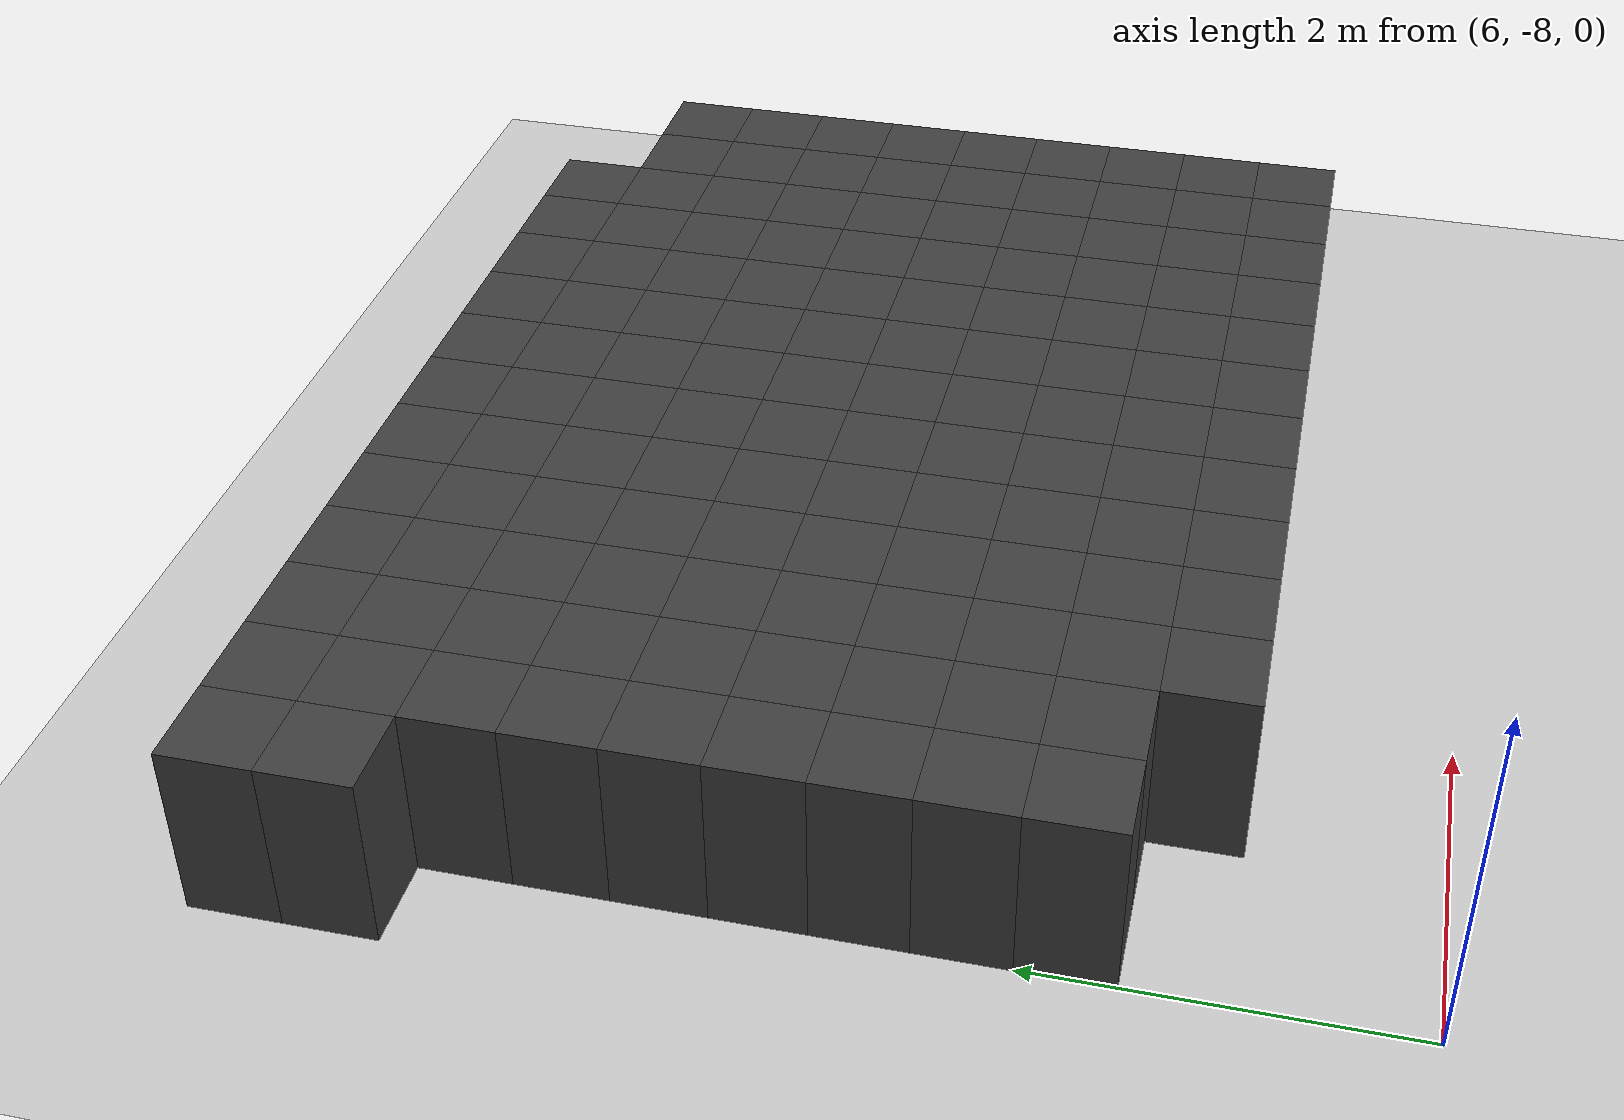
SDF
<sdf version="1.7">
 <world name="map_11515">
  <model name="ground_plane">
   <static>true</static>
   <link name="link">
    <collision name="collision">
     <geometry><plane><normal>0 0 1</normal><size>200 200</size></plane></geometry>
    </collision>
    <visual name="visual">
     <geometry><plane><normal>0 0 1</normal><size>200 200</size></plane></geometry>
     <material><ambient>0.8 0.8 0.8 1</ambient><diffuse>0.8 0.8 0.8 1</diffuse></material>
    </visual>
   </link>
  </model>
  <model name="maze_environment">
   <static>true</static>
   <link name="wall_1259">
    <pose>5.750 -2.250 0.500 0 0 0</pose>
    <collision name="col"><geometry><box><size>0.5 0.5 1.0</size></box></geometry></collision>
    <visual name="vis">
     <geometry><box><size>0.5 0.5 1.0</size></box></geometry>
     <material><ambient>0.15 0.15 0.15 1</ambient><diffuse>0.25 0.25 0.25 1</diffuse></material>
    </visual>
   </link>
   <link name="wall_1260">
    <pose>6.250 -2.250 0.500 0 0 0</pose>
    <collision name="col"><geometry><box><size>0.5 0.5 1.0</size></box></geometry></collision>
    <visual name="vis">
     <geometry><box><size>0.5 0.5 1.0</size></box></geometry>
     <material><ambient>0.15 0.15 0.15 1</ambient><diffuse>0.25 0.25 0.25 1</diffuse></material>
    </visual>
   </link>
   <link name="wall_1261">
    <pose>6.750 -2.250 0.500 0 0 0</pose>
    <collision name="col"><geometry><box><size>0.5 0.5 1.0</size></box></geometry></collision>
    <visual name="vis">
     <geometry><box><size>0.5 0.5 1.0</size></box></geometry>
     <material><ambient>0.15 0.15 0.15 1</ambient><diffuse>0.25 0.25 0.25 1</diffuse></material>
    </visual>
   </link>
   <link name="wall_1262">
    <pose>7.250 -2.250 0.500 0 0 0</pose>
    <collision name="col"><geometry><box><size>0.5 0.5 1.0</size></box></geometry></collision>
    <visual name="vis">
     <geometry><box><size>0.5 0.5 1.0</size></box></geometry>
     <material><ambient>0.15 0.15 0.15 1</ambient><diffuse>0.25 0.25 0.25 1</diffuse></material>
    </visual>
   </link>
   <link name="wall_1263">
    <pose>7.750 -2.250 0.500 0 0 0</pose>
    <collision name="col"><geometry><box><size>0.5 0.5 1.0</size></box></geometry></collision>
    <visual name="vis">
     <geometry><box><size>0.5 0.5 1.0</size></box></geometry>
     <material><ambient>0.15 0.15 0.15 1</ambient><diffuse>0.25 0.25 0.25 1</diffuse></material>
    </visual>
   </link>
   <link name="wall_1264">
    <pose>8.250 -2.250 0.500 0 0 0</pose>
    <collision name="col"><geometry><box><size>0.5 0.5 1.0</size></box></geometry></collision>
    <visual name="vis">
     <geometry><box><size>0.5 0.5 1.0</size></box></geometry>
     <material><ambient>0.15 0.15 0.15 1</ambient><diffuse>0.25 0.25 0.25 1</diffuse></material>
    </visual>
   </link>
   <link name="wall_1265">
    <pose>8.750 -2.250 0.500 0 0 0</pose>
    <collision name="col"><geometry><box><size>0.5 0.5 1.0</size></box></geometry></collision>
    <visual name="vis">
     <geometry><box><size>0.5 0.5 1.0</size></box></geometry>
     <material><ambient>0.15 0.15 0.15 1</ambient><diffuse>0.25 0.25 0.25 1</diffuse></material>
    </visual>
   </link>
   <link name="wall_1266">
    <pose>9.250 -2.250 0.500 0 0 0</pose>
    <collision name="col"><geometry><box><size>0.5 0.5 1.0</size></box></geometry></collision>
    <visual name="vis">
     <geometry><box><size>0.5 0.5 1.0</size></box></geometry>
     <material><ambient>0.15 0.15 0.15 1</ambient><diffuse>0.25 0.25 0.25 1</diffuse></material>
    </visual>
   </link>
   <link name="wall_1267">
    <pose>9.750 -2.250 0.500 0 0 0</pose>
    <collision name="col"><geometry><box><size>0.5 0.5 1.0</size></box></geometry></collision>
    <visual name="vis">
     <geometry><box><size>0.5 0.5 1.0</size></box></geometry>
     <material><ambient>0.15 0.15 0.15 1</ambient><diffuse>0.25 0.25 0.25 1</diffuse></material>
    </visual>
   </link>
   <link name="wall_1268">
    <pose>10.250 -2.250 0.500 0 0 0</pose>
    <collision name="col"><geometry><box><size>0.5 0.5 1.0</size></box></geometry></collision>
    <visual name="vis">
     <geometry><box><size>0.5 0.5 1.0</size></box></geometry>
     <material><ambient>0.15 0.15 0.15 1</ambient><diffuse>0.25 0.25 0.25 1</diffuse></material>
    </visual>
   </link>
   <link name="wall_1269">
    <pose>10.750 -2.250 0.500 0 0 0</pose>
    <collision name="col"><geometry><box><size>0.5 0.5 1.0</size></box></geometry></collision>
    <visual name="vis">
     <geometry><box><size>0.5 0.5 1.0</size></box></geometry>
     <material><ambient>0.15 0.15 0.15 1</ambient><diffuse>0.25 0.25 0.25 1</diffuse></material>
    </visual>
   </link>
   <link name="wall_1270">
    <pose>11.250 -2.250 0.500 0 0 0</pose>
    <collision name="col"><geometry><box><size>0.5 0.5 1.0</size></box></geometry></collision>
    <visual name="vis">
     <geometry><box><size>0.5 0.5 1.0</size></box></geometry>
     <material><ambient>0.15 0.15 0.15 1</ambient><diffuse>0.25 0.25 0.25 1</diffuse></material>
    </visual>
   </link>
   <link name="wall_1305">
    <pose>5.750 -2.750 0.500 0 0 0</pose>
    <collision name="col"><geometry><box><size>0.5 0.5 1.0</size></box></geometry></collision>
    <visual name="vis">
     <geometry><box><size>0.5 0.5 1.0</size></box></geometry>
     <material><ambient>0.15 0.15 0.15 1</ambient><diffuse>0.25 0.25 0.25 1</diffuse></material>
    </visual>
   </link>
   <link name="wall_1306">
    <pose>6.250 -2.750 0.500 0 0 0</pose>
    <collision name="col"><geometry><box><size>0.5 0.5 1.0</size></box></geometry></collision>
    <visual name="vis">
     <geometry><box><size>0.5 0.5 1.0</size></box></geometry>
     <material><ambient>0.15 0.15 0.15 1</ambient><diffuse>0.25 0.25 0.25 1</diffuse></material>
    </visual>
   </link>
   <link name="wall_1307">
    <pose>6.750 -2.750 0.500 0 0 0</pose>
    <collision name="col"><geometry><box><size>0.5 0.5 1.0</size></box></geometry></collision>
    <visual name="vis">
     <geometry><box><size>0.5 0.5 1.0</size></box></geometry>
     <material><ambient>0.15 0.15 0.15 1</ambient><diffuse>0.25 0.25 0.25 1</diffuse></material>
    </visual>
   </link>
   <link name="wall_1308">
    <pose>7.250 -2.750 0.500 0 0 0</pose>
    <collision name="col"><geometry><box><size>0.5 0.5 1.0</size></box></geometry></collision>
    <visual name="vis">
     <geometry><box><size>0.5 0.5 1.0</size></box></geometry>
     <material><ambient>0.15 0.15 0.15 1</ambient><diffuse>0.25 0.25 0.25 1</diffuse></material>
    </visual>
   </link>
   <link name="wall_1309">
    <pose>7.750 -2.750 0.500 0 0 0</pose>
    <collision name="col"><geometry><box><size>0.5 0.5 1.0</size></box></geometry></collision>
    <visual name="vis">
     <geometry><box><size>0.5 0.5 1.0</size></box></geometry>
     <material><ambient>0.15 0.15 0.15 1</ambient><diffuse>0.25 0.25 0.25 1</diffuse></material>
    </visual>
   </link>
   <link name="wall_1310">
    <pose>8.250 -2.750 0.500 0 0 0</pose>
    <collision name="col"><geometry><box><size>0.5 0.5 1.0</size></box></geometry></collision>
    <visual name="vis">
     <geometry><box><size>0.5 0.5 1.0</size></box></geometry>
     <material><ambient>0.15 0.15 0.15 1</ambient><diffuse>0.25 0.25 0.25 1</diffuse></material>
    </visual>
   </link>
   <link name="wall_1311">
    <pose>8.750 -2.750 0.500 0 0 0</pose>
    <collision name="col"><geometry><box><size>0.5 0.5 1.0</size></box></geometry></collision>
    <visual name="vis">
     <geometry><box><size>0.5 0.5 1.0</size></box></geometry>
     <material><ambient>0.15 0.15 0.15 1</ambient><diffuse>0.25 0.25 0.25 1</diffuse></material>
    </visual>
   </link>
   <link name="wall_1312">
    <pose>9.250 -2.750 0.500 0 0 0</pose>
    <collision name="col"><geometry><box><size>0.5 0.5 1.0</size></box></geometry></collision>
    <visual name="vis">
     <geometry><box><size>0.5 0.5 1.0</size></box></geometry>
     <material><ambient>0.15 0.15 0.15 1</ambient><diffuse>0.25 0.25 0.25 1</diffuse></material>
    </visual>
   </link>
   <link name="wall_1313">
    <pose>9.750 -2.750 0.500 0 0 0</pose>
    <collision name="col"><geometry><box><size>0.5 0.5 1.0</size></box></geometry></collision>
    <visual name="vis">
     <geometry><box><size>0.5 0.5 1.0</size></box></geometry>
     <material><ambient>0.15 0.15 0.15 1</ambient><diffuse>0.25 0.25 0.25 1</diffuse></material>
    </visual>
   </link>
   <link name="wall_1314">
    <pose>10.250 -2.750 0.500 0 0 0</pose>
    <collision name="col"><geometry><box><size>0.5 0.5 1.0</size></box></geometry></collision>
    <visual name="vis">
     <geometry><box><size>0.5 0.5 1.0</size></box></geometry>
     <material><ambient>0.15 0.15 0.15 1</ambient><diffuse>0.25 0.25 0.25 1</diffuse></material>
    </visual>
   </link>
   <link name="wall_1315">
    <pose>10.750 -2.750 0.500 0 0 0</pose>
    <collision name="col"><geometry><box><size>0.5 0.5 1.0</size></box></geometry></collision>
    <visual name="vis">
     <geometry><box><size>0.5 0.5 1.0</size></box></geometry>
     <material><ambient>0.15 0.15 0.15 1</ambient><diffuse>0.25 0.25 0.25 1</diffuse></material>
    </visual>
   </link>
   <link name="wall_1316">
    <pose>11.250 -2.750 0.500 0 0 0</pose>
    <collision name="col"><geometry><box><size>0.5 0.5 1.0</size></box></geometry></collision>
    <visual name="vis">
     <geometry><box><size>0.5 0.5 1.0</size></box></geometry>
     <material><ambient>0.15 0.15 0.15 1</ambient><diffuse>0.25 0.25 0.25 1</diffuse></material>
    </visual>
   </link>
   <link name="wall_1317">
    <pose>11.750 -2.750 0.500 0 0 0</pose>
    <collision name="col"><geometry><box><size>0.5 0.5 1.0</size></box></geometry></collision>
    <visual name="vis">
     <geometry><box><size>0.5 0.5 1.0</size></box></geometry>
     <material><ambient>0.15 0.15 0.15 1</ambient><diffuse>0.25 0.25 0.25 1</diffuse></material>
    </visual>
   </link>
   <link name="wall_1318">
    <pose>12.250 -2.750 0.500 0 0 0</pose>
    <collision name="col"><geometry><box><size>0.5 0.5 1.0</size></box></geometry></collision>
    <visual name="vis">
     <geometry><box><size>0.5 0.5 1.0</size></box></geometry>
     <material><ambient>0.15 0.15 0.15 1</ambient><diffuse>0.25 0.25 0.25 1</diffuse></material>
    </visual>
   </link>
   <link name="wall_1352">
    <pose>6.250 -3.250 0.500 0 0 0</pose>
    <collision name="col"><geometry><box><size>0.5 0.5 1.0</size></box></geometry></collision>
    <visual name="vis">
     <geometry><box><size>0.5 0.5 1.0</size></box></geometry>
     <material><ambient>0.15 0.15 0.15 1</ambient><diffuse>0.25 0.25 0.25 1</diffuse></material>
    </visual>
   </link>
   <link name="wall_1353">
    <pose>6.750 -3.250 0.500 0 0 0</pose>
    <collision name="col"><geometry><box><size>0.5 0.5 1.0</size></box></geometry></collision>
    <visual name="vis">
     <geometry><box><size>0.5 0.5 1.0</size></box></geometry>
     <material><ambient>0.15 0.15 0.15 1</ambient><diffuse>0.25 0.25 0.25 1</diffuse></material>
    </visual>
   </link>
   <link name="wall_1354">
    <pose>7.250 -3.250 0.500 0 0 0</pose>
    <collision name="col"><geometry><box><size>0.5 0.5 1.0</size></box></geometry></collision>
    <visual name="vis">
     <geometry><box><size>0.5 0.5 1.0</size></box></geometry>
     <material><ambient>0.15 0.15 0.15 1</ambient><diffuse>0.25 0.25 0.25 1</diffuse></material>
    </visual>
   </link>
   <link name="wall_1355">
    <pose>7.750 -3.250 0.500 0 0 0</pose>
    <collision name="col"><geometry><box><size>0.5 0.5 1.0</size></box></geometry></collision>
    <visual name="vis">
     <geometry><box><size>0.5 0.5 1.0</size></box></geometry>
     <material><ambient>0.15 0.15 0.15 1</ambient><diffuse>0.25 0.25 0.25 1</diffuse></material>
    </visual>
   </link>
   <link name="wall_1356">
    <pose>8.250 -3.250 0.500 0 0 0</pose>
    <collision name="col"><geometry><box><size>0.5 0.5 1.0</size></box></geometry></collision>
    <visual name="vis">
     <geometry><box><size>0.5 0.5 1.0</size></box></geometry>
     <material><ambient>0.15 0.15 0.15 1</ambient><diffuse>0.25 0.25 0.25 1</diffuse></material>
    </visual>
   </link>
   <link name="wall_1357">
    <pose>8.750 -3.250 0.500 0 0 0</pose>
    <collision name="col"><geometry><box><size>0.5 0.5 1.0</size></box></geometry></collision>
    <visual name="vis">
     <geometry><box><size>0.5 0.5 1.0</size></box></geometry>
     <material><ambient>0.15 0.15 0.15 1</ambient><diffuse>0.25 0.25 0.25 1</diffuse></material>
    </visual>
   </link>
   <link name="wall_1358">
    <pose>9.250 -3.250 0.500 0 0 0</pose>
    <collision name="col"><geometry><box><size>0.5 0.5 1.0</size></box></geometry></collision>
    <visual name="vis">
     <geometry><box><size>0.5 0.5 1.0</size></box></geometry>
     <material><ambient>0.15 0.15 0.15 1</ambient><diffuse>0.25 0.25 0.25 1</diffuse></material>
    </visual>
   </link>
   <link name="wall_1359">
    <pose>9.750 -3.250 0.500 0 0 0</pose>
    <collision name="col"><geometry><box><size>0.5 0.5 1.0</size></box></geometry></collision>
    <visual name="vis">
     <geometry><box><size>0.5 0.5 1.0</size></box></geometry>
     <material><ambient>0.15 0.15 0.15 1</ambient><diffuse>0.25 0.25 0.25 1</diffuse></material>
    </visual>
   </link>
   <link name="wall_1360">
    <pose>10.250 -3.250 0.500 0 0 0</pose>
    <collision name="col"><geometry><box><size>0.5 0.5 1.0</size></box></geometry></collision>
    <visual name="vis">
     <geometry><box><size>0.5 0.5 1.0</size></box></geometry>
     <material><ambient>0.15 0.15 0.15 1</ambient><diffuse>0.25 0.25 0.25 1</diffuse></material>
    </visual>
   </link>
   <link name="wall_1361">
    <pose>10.750 -3.250 0.500 0 0 0</pose>
    <collision name="col"><geometry><box><size>0.5 0.5 1.0</size></box></geometry></collision>
    <visual name="vis">
     <geometry><box><size>0.5 0.5 1.0</size></box></geometry>
     <material><ambient>0.15 0.15 0.15 1</ambient><diffuse>0.25 0.25 0.25 1</diffuse></material>
    </visual>
   </link>
   <link name="wall_1362">
    <pose>11.250 -3.250 0.500 0 0 0</pose>
    <collision name="col"><geometry><box><size>0.5 0.5 1.0</size></box></geometry></collision>
    <visual name="vis">
     <geometry><box><size>0.5 0.5 1.0</size></box></geometry>
     <material><ambient>0.15 0.15 0.15 1</ambient><diffuse>0.25 0.25 0.25 1</diffuse></material>
    </visual>
   </link>
   <link name="wall_1363">
    <pose>11.750 -3.250 0.500 0 0 0</pose>
    <collision name="col"><geometry><box><size>0.5 0.5 1.0</size></box></geometry></collision>
    <visual name="vis">
     <geometry><box><size>0.5 0.5 1.0</size></box></geometry>
     <material><ambient>0.15 0.15 0.15 1</ambient><diffuse>0.25 0.25 0.25 1</diffuse></material>
    </visual>
   </link>
   <link name="wall_1364">
    <pose>12.250 -3.250 0.500 0 0 0</pose>
    <collision name="col"><geometry><box><size>0.5 0.5 1.0</size></box></geometry></collision>
    <visual name="vis">
     <geometry><box><size>0.5 0.5 1.0</size></box></geometry>
     <material><ambient>0.15 0.15 0.15 1</ambient><diffuse>0.25 0.25 0.25 1</diffuse></material>
    </visual>
   </link>
   <link name="wall_1398">
    <pose>6.250 -3.750 0.500 0 0 0</pose>
    <collision name="col"><geometry><box><size>0.5 0.5 1.0</size></box></geometry></collision>
    <visual name="vis">
     <geometry><box><size>0.5 0.5 1.0</size></box></geometry>
     <material><ambient>0.15 0.15 0.15 1</ambient><diffuse>0.25 0.25 0.25 1</diffuse></material>
    </visual>
   </link>
   <link name="wall_1399">
    <pose>6.750 -3.750 0.500 0 0 0</pose>
    <collision name="col"><geometry><box><size>0.5 0.5 1.0</size></box></geometry></collision>
    <visual name="vis">
     <geometry><box><size>0.5 0.5 1.0</size></box></geometry>
     <material><ambient>0.15 0.15 0.15 1</ambient><diffuse>0.25 0.25 0.25 1</diffuse></material>
    </visual>
   </link>
   <link name="wall_1400">
    <pose>7.250 -3.750 0.500 0 0 0</pose>
    <collision name="col"><geometry><box><size>0.5 0.5 1.0</size></box></geometry></collision>
    <visual name="vis">
     <geometry><box><size>0.5 0.5 1.0</size></box></geometry>
     <material><ambient>0.15 0.15 0.15 1</ambient><diffuse>0.25 0.25 0.25 1</diffuse></material>
    </visual>
   </link>
   <link name="wall_1401">
    <pose>7.750 -3.750 0.500 0 0 0</pose>
    <collision name="col"><geometry><box><size>0.5 0.5 1.0</size></box></geometry></collision>
    <visual name="vis">
     <geometry><box><size>0.5 0.5 1.0</size></box></geometry>
     <material><ambient>0.15 0.15 0.15 1</ambient><diffuse>0.25 0.25 0.25 1</diffuse></material>
    </visual>
   </link>
   <link name="wall_1402">
    <pose>8.250 -3.750 0.500 0 0 0</pose>
    <collision name="col"><geometry><box><size>0.5 0.5 1.0</size></box></geometry></collision>
    <visual name="vis">
     <geometry><box><size>0.5 0.5 1.0</size></box></geometry>
     <material><ambient>0.15 0.15 0.15 1</ambient><diffuse>0.25 0.25 0.25 1</diffuse></material>
    </visual>
   </link>
   <link name="wall_1403">
    <pose>8.750 -3.750 0.500 0 0 0</pose>
    <collision name="col"><geometry><box><size>0.5 0.5 1.0</size></box></geometry></collision>
    <visual name="vis">
     <geometry><box><size>0.5 0.5 1.0</size></box></geometry>
     <material><ambient>0.15 0.15 0.15 1</ambient><diffuse>0.25 0.25 0.25 1</diffuse></material>
    </visual>
   </link>
   <link name="wall_1404">
    <pose>9.250 -3.750 0.500 0 0 0</pose>
    <collision name="col"><geometry><box><size>0.5 0.5 1.0</size></box></geometry></collision>
    <visual name="vis">
     <geometry><box><size>0.5 0.5 1.0</size></box></geometry>
     <material><ambient>0.15 0.15 0.15 1</ambient><diffuse>0.25 0.25 0.25 1</diffuse></material>
    </visual>
   </link>
   <link name="wall_1405">
    <pose>9.750 -3.750 0.500 0 0 0</pose>
    <collision name="col"><geometry><box><size>0.5 0.5 1.0</size></box></geometry></collision>
    <visual name="vis">
     <geometry><box><size>0.5 0.5 1.0</size></box></geometry>
     <material><ambient>0.15 0.15 0.15 1</ambient><diffuse>0.25 0.25 0.25 1</diffuse></material>
    </visual>
   </link>
   <link name="wall_1406">
    <pose>10.250 -3.750 0.500 0 0 0</pose>
    <collision name="col"><geometry><box><size>0.5 0.5 1.0</size></box></geometry></collision>
    <visual name="vis">
     <geometry><box><size>0.5 0.5 1.0</size></box></geometry>
     <material><ambient>0.15 0.15 0.15 1</ambient><diffuse>0.25 0.25 0.25 1</diffuse></material>
    </visual>
   </link>
   <link name="wall_1407">
    <pose>10.750 -3.750 0.500 0 0 0</pose>
    <collision name="col"><geometry><box><size>0.5 0.5 1.0</size></box></geometry></collision>
    <visual name="vis">
     <geometry><box><size>0.5 0.5 1.0</size></box></geometry>
     <material><ambient>0.15 0.15 0.15 1</ambient><diffuse>0.25 0.25 0.25 1</diffuse></material>
    </visual>
   </link>
   <link name="wall_1408">
    <pose>11.250 -3.750 0.500 0 0 0</pose>
    <collision name="col"><geometry><box><size>0.5 0.5 1.0</size></box></geometry></collision>
    <visual name="vis">
     <geometry><box><size>0.5 0.5 1.0</size></box></geometry>
     <material><ambient>0.15 0.15 0.15 1</ambient><diffuse>0.25 0.25 0.25 1</diffuse></material>
    </visual>
   </link>
   <link name="wall_1409">
    <pose>11.750 -3.750 0.500 0 0 0</pose>
    <collision name="col"><geometry><box><size>0.5 0.5 1.0</size></box></geometry></collision>
    <visual name="vis">
     <geometry><box><size>0.5 0.5 1.0</size></box></geometry>
     <material><ambient>0.15 0.15 0.15 1</ambient><diffuse>0.25 0.25 0.25 1</diffuse></material>
    </visual>
   </link>
   <link name="wall_1410">
    <pose>12.250 -3.750 0.500 0 0 0</pose>
    <collision name="col"><geometry><box><size>0.5 0.5 1.0</size></box></geometry></collision>
    <visual name="vis">
     <geometry><box><size>0.5 0.5 1.0</size></box></geometry>
     <material><ambient>0.15 0.15 0.15 1</ambient><diffuse>0.25 0.25 0.25 1</diffuse></material>
    </visual>
   </link>
   <link name="wall_1444">
    <pose>6.250 -4.250 0.500 0 0 0</pose>
    <collision name="col"><geometry><box><size>0.5 0.5 1.0</size></box></geometry></collision>
    <visual name="vis">
     <geometry><box><size>0.5 0.5 1.0</size></box></geometry>
     <material><ambient>0.15 0.15 0.15 1</ambient><diffuse>0.25 0.25 0.25 1</diffuse></material>
    </visual>
   </link>
   <link name="wall_1445">
    <pose>6.750 -4.250 0.500 0 0 0</pose>
    <collision name="col"><geometry><box><size>0.5 0.5 1.0</size></box></geometry></collision>
    <visual name="vis">
     <geometry><box><size>0.5 0.5 1.0</size></box></geometry>
     <material><ambient>0.15 0.15 0.15 1</ambient><diffuse>0.25 0.25 0.25 1</diffuse></material>
    </visual>
   </link>
   <link name="wall_1446">
    <pose>7.250 -4.250 0.500 0 0 0</pose>
    <collision name="col"><geometry><box><size>0.5 0.5 1.0</size></box></geometry></collision>
    <visual name="vis">
     <geometry><box><size>0.5 0.5 1.0</size></box></geometry>
     <material><ambient>0.15 0.15 0.15 1</ambient><diffuse>0.25 0.25 0.25 1</diffuse></material>
    </visual>
   </link>
   <link name="wall_1447">
    <pose>7.750 -4.250 0.500 0 0 0</pose>
    <collision name="col"><geometry><box><size>0.5 0.5 1.0</size></box></geometry></collision>
    <visual name="vis">
     <geometry><box><size>0.5 0.5 1.0</size></box></geometry>
     <material><ambient>0.15 0.15 0.15 1</ambient><diffuse>0.25 0.25 0.25 1</diffuse></material>
    </visual>
   </link>
   <link name="wall_1448">
    <pose>8.250 -4.250 0.500 0 0 0</pose>
    <collision name="col"><geometry><box><size>0.5 0.5 1.0</size></box></geometry></collision>
    <visual name="vis">
     <geometry><box><size>0.5 0.5 1.0</size></box></geometry>
     <material><ambient>0.15 0.15 0.15 1</ambient><diffuse>0.25 0.25 0.25 1</diffuse></material>
    </visual>
   </link>
   <link name="wall_1449">
    <pose>8.750 -4.250 0.500 0 0 0</pose>
    <collision name="col"><geometry><box><size>0.5 0.5 1.0</size></box></geometry></collision>
    <visual name="vis">
     <geometry><box><size>0.5 0.5 1.0</size></box></geometry>
     <material><ambient>0.15 0.15 0.15 1</ambient><diffuse>0.25 0.25 0.25 1</diffuse></material>
    </visual>
   </link>
   <link name="wall_1450">
    <pose>9.250 -4.250 0.500 0 0 0</pose>
    <collision name="col"><geometry><box><size>0.5 0.5 1.0</size></box></geometry></collision>
    <visual name="vis">
     <geometry><box><size>0.5 0.5 1.0</size></box></geometry>
     <material><ambient>0.15 0.15 0.15 1</ambient><diffuse>0.25 0.25 0.25 1</diffuse></material>
    </visual>
   </link>
   <link name="wall_1451">
    <pose>9.750 -4.250 0.500 0 0 0</pose>
    <collision name="col"><geometry><box><size>0.5 0.5 1.0</size></box></geometry></collision>
    <visual name="vis">
     <geometry><box><size>0.5 0.5 1.0</size></box></geometry>
     <material><ambient>0.15 0.15 0.15 1</ambient><diffuse>0.25 0.25 0.25 1</diffuse></material>
    </visual>
   </link>
   <link name="wall_1452">
    <pose>10.250 -4.250 0.500 0 0 0</pose>
    <collision name="col"><geometry><box><size>0.5 0.5 1.0</size></box></geometry></collision>
    <visual name="vis">
     <geometry><box><size>0.5 0.5 1.0</size></box></geometry>
     <material><ambient>0.15 0.15 0.15 1</ambient><diffuse>0.25 0.25 0.25 1</diffuse></material>
    </visual>
   </link>
   <link name="wall_1453">
    <pose>10.750 -4.250 0.500 0 0 0</pose>
    <collision name="col"><geometry><box><size>0.5 0.5 1.0</size></box></geometry></collision>
    <visual name="vis">
     <geometry><box><size>0.5 0.5 1.0</size></box></geometry>
     <material><ambient>0.15 0.15 0.15 1</ambient><diffuse>0.25 0.25 0.25 1</diffuse></material>
    </visual>
   </link>
   <link name="wall_1454">
    <pose>11.250 -4.250 0.500 0 0 0</pose>
    <collision name="col"><geometry><box><size>0.5 0.5 1.0</size></box></geometry></collision>
    <visual name="vis">
     <geometry><box><size>0.5 0.5 1.0</size></box></geometry>
     <material><ambient>0.15 0.15 0.15 1</ambient><diffuse>0.25 0.25 0.25 1</diffuse></material>
    </visual>
   </link>
   <link name="wall_1455">
    <pose>11.750 -4.250 0.500 0 0 0</pose>
    <collision name="col"><geometry><box><size>0.5 0.5 1.0</size></box></geometry></collision>
    <visual name="vis">
     <geometry><box><size>0.5 0.5 1.0</size></box></geometry>
     <material><ambient>0.15 0.15 0.15 1</ambient><diffuse>0.25 0.25 0.25 1</diffuse></material>
    </visual>
   </link>
   <link name="wall_1456">
    <pose>12.250 -4.250 0.500 0 0 0</pose>
    <collision name="col"><geometry><box><size>0.5 0.5 1.0</size></box></geometry></collision>
    <visual name="vis">
     <geometry><box><size>0.5 0.5 1.0</size></box></geometry>
     <material><ambient>0.15 0.15 0.15 1</ambient><diffuse>0.25 0.25 0.25 1</diffuse></material>
    </visual>
   </link>
   <link name="wall_1490">
    <pose>6.250 -4.750 0.500 0 0 0</pose>
    <collision name="col"><geometry><box><size>0.5 0.5 1.0</size></box></geometry></collision>
    <visual name="vis">
     <geometry><box><size>0.5 0.5 1.0</size></box></geometry>
     <material><ambient>0.15 0.15 0.15 1</ambient><diffuse>0.25 0.25 0.25 1</diffuse></material>
    </visual>
   </link>
   <link name="wall_1491">
    <pose>6.750 -4.750 0.500 0 0 0</pose>
    <collision name="col"><geometry><box><size>0.5 0.5 1.0</size></box></geometry></collision>
    <visual name="vis">
     <geometry><box><size>0.5 0.5 1.0</size></box></geometry>
     <material><ambient>0.15 0.15 0.15 1</ambient><diffuse>0.25 0.25 0.25 1</diffuse></material>
    </visual>
   </link>
   <link name="wall_1492">
    <pose>7.250 -4.750 0.500 0 0 0</pose>
    <collision name="col"><geometry><box><size>0.5 0.5 1.0</size></box></geometry></collision>
    <visual name="vis">
     <geometry><box><size>0.5 0.5 1.0</size></box></geometry>
     <material><ambient>0.15 0.15 0.15 1</ambient><diffuse>0.25 0.25 0.25 1</diffuse></material>
    </visual>
   </link>
   <link name="wall_1493">
    <pose>7.750 -4.750 0.500 0 0 0</pose>
    <collision name="col"><geometry><box><size>0.5 0.5 1.0</size></box></geometry></collision>
    <visual name="vis">
     <geometry><box><size>0.5 0.5 1.0</size></box></geometry>
     <material><ambient>0.15 0.15 0.15 1</ambient><diffuse>0.25 0.25 0.25 1</diffuse></material>
    </visual>
   </link>
   <link name="wall_1494">
    <pose>8.250 -4.750 0.500 0 0 0</pose>
    <collision name="col"><geometry><box><size>0.5 0.5 1.0</size></box></geometry></collision>
    <visual name="vis">
     <geometry><box><size>0.5 0.5 1.0</size></box></geometry>
     <material><ambient>0.15 0.15 0.15 1</ambient><diffuse>0.25 0.25 0.25 1</diffuse></material>
    </visual>
   </link>
   <link name="wall_1495">
    <pose>8.750 -4.750 0.500 0 0 0</pose>
    <collision name="col"><geometry><box><size>0.5 0.5 1.0</size></box></geometry></collision>
    <visual name="vis">
     <geometry><box><size>0.5 0.5 1.0</size></box></geometry>
     <material><ambient>0.15 0.15 0.15 1</ambient><diffuse>0.25 0.25 0.25 1</diffuse></material>
    </visual>
   </link>
   <link name="wall_1496">
    <pose>9.250 -4.750 0.500 0 0 0</pose>
    <collision name="col"><geometry><box><size>0.5 0.5 1.0</size></box></geometry></collision>
    <visual name="vis">
     <geometry><box><size>0.5 0.5 1.0</size></box></geometry>
     <material><ambient>0.15 0.15 0.15 1</ambient><diffuse>0.25 0.25 0.25 1</diffuse></material>
    </visual>
   </link>
   <link name="wall_1497">
    <pose>9.750 -4.750 0.500 0 0 0</pose>
    <collision name="col"><geometry><box><size>0.5 0.5 1.0</size></box></geometry></collision>
    <visual name="vis">
     <geometry><box><size>0.5 0.5 1.0</size></box></geometry>
     <material><ambient>0.15 0.15 0.15 1</ambient><diffuse>0.25 0.25 0.25 1</diffuse></material>
    </visual>
   </link>
   <link name="wall_1498">
    <pose>10.250 -4.750 0.500 0 0 0</pose>
    <collision name="col"><geometry><box><size>0.5 0.5 1.0</size></box></geometry></collision>
    <visual name="vis">
     <geometry><box><size>0.5 0.5 1.0</size></box></geometry>
     <material><ambient>0.15 0.15 0.15 1</ambient><diffuse>0.25 0.25 0.25 1</diffuse></material>
    </visual>
   </link>
   <link name="wall_1499">
    <pose>10.750 -4.750 0.500 0 0 0</pose>
    <collision name="col"><geometry><box><size>0.5 0.5 1.0</size></box></geometry></collision>
    <visual name="vis">
     <geometry><box><size>0.5 0.5 1.0</size></box></geometry>
     <material><ambient>0.15 0.15 0.15 1</ambient><diffuse>0.25 0.25 0.25 1</diffuse></material>
    </visual>
   </link>
   <link name="wall_1500">
    <pose>11.250 -4.750 0.500 0 0 0</pose>
    <collision name="col"><geometry><box><size>0.5 0.5 1.0</size></box></geometry></collision>
    <visual name="vis">
     <geometry><box><size>0.5 0.5 1.0</size></box></geometry>
     <material><ambient>0.15 0.15 0.15 1</ambient><diffuse>0.25 0.25 0.25 1</diffuse></material>
    </visual>
   </link>
   <link name="wall_1501">
    <pose>11.750 -4.750 0.500 0 0 0</pose>
    <collision name="col"><geometry><box><size>0.5 0.5 1.0</size></box></geometry></collision>
    <visual name="vis">
     <geometry><box><size>0.5 0.5 1.0</size></box></geometry>
     <material><ambient>0.15 0.15 0.15 1</ambient><diffuse>0.25 0.25 0.25 1</diffuse></material>
    </visual>
   </link>
   <link name="wall_1502">
    <pose>12.250 -4.750 0.500 0 0 0</pose>
    <collision name="col"><geometry><box><size>0.5 0.5 1.0</size></box></geometry></collision>
    <visual name="vis">
     <geometry><box><size>0.5 0.5 1.0</size></box></geometry>
     <material><ambient>0.15 0.15 0.15 1</ambient><diffuse>0.25 0.25 0.25 1</diffuse></material>
    </visual>
   </link>
   <link name="wall_1539">
    <pose>6.250 -5.250 0.500 0 0 0</pose>
    <collision name="col"><geometry><box><size>0.5 0.5 1.0</size></box></geometry></collision>
    <visual name="vis">
     <geometry><box><size>0.5 0.5 1.0</size></box></geometry>
     <material><ambient>0.15 0.15 0.15 1</ambient><diffuse>0.25 0.25 0.25 1</diffuse></material>
    </visual>
   </link>
   <link name="wall_1540">
    <pose>6.750 -5.250 0.500 0 0 0</pose>
    <collision name="col"><geometry><box><size>0.5 0.5 1.0</size></box></geometry></collision>
    <visual name="vis">
     <geometry><box><size>0.5 0.5 1.0</size></box></geometry>
     <material><ambient>0.15 0.15 0.15 1</ambient><diffuse>0.25 0.25 0.25 1</diffuse></material>
    </visual>
   </link>
   <link name="wall_1541">
    <pose>7.250 -5.250 0.500 0 0 0</pose>
    <collision name="col"><geometry><box><size>0.5 0.5 1.0</size></box></geometry></collision>
    <visual name="vis">
     <geometry><box><size>0.5 0.5 1.0</size></box></geometry>
     <material><ambient>0.15 0.15 0.15 1</ambient><diffuse>0.25 0.25 0.25 1</diffuse></material>
    </visual>
   </link>
   <link name="wall_1542">
    <pose>7.750 -5.250 0.500 0 0 0</pose>
    <collision name="col"><geometry><box><size>0.5 0.5 1.0</size></box></geometry></collision>
    <visual name="vis">
     <geometry><box><size>0.5 0.5 1.0</size></box></geometry>
     <material><ambient>0.15 0.15 0.15 1</ambient><diffuse>0.25 0.25 0.25 1</diffuse></material>
    </visual>
   </link>
   <link name="wall_1543">
    <pose>8.250 -5.250 0.500 0 0 0</pose>
    <collision name="col"><geometry><box><size>0.5 0.5 1.0</size></box></geometry></collision>
    <visual name="vis">
     <geometry><box><size>0.5 0.5 1.0</size></box></geometry>
     <material><ambient>0.15 0.15 0.15 1</ambient><diffuse>0.25 0.25 0.25 1</diffuse></material>
    </visual>
   </link>
   <link name="wall_1544">
    <pose>8.750 -5.250 0.500 0 0 0</pose>
    <collision name="col"><geometry><box><size>0.5 0.5 1.0</size></box></geometry></collision>
    <visual name="vis">
     <geometry><box><size>0.5 0.5 1.0</size></box></geometry>
     <material><ambient>0.15 0.15 0.15 1</ambient><diffuse>0.25 0.25 0.25 1</diffuse></material>
    </visual>
   </link>
   <link name="wall_1545">
    <pose>9.250 -5.250 0.500 0 0 0</pose>
    <collision name="col"><geometry><box><size>0.5 0.5 1.0</size></box></geometry></collision>
    <visual name="vis">
     <geometry><box><size>0.5 0.5 1.0</size></box></geometry>
     <material><ambient>0.15 0.15 0.15 1</ambient><diffuse>0.25 0.25 0.25 1</diffuse></material>
    </visual>
   </link>
   <link name="wall_1546">
    <pose>9.750 -5.250 0.500 0 0 0</pose>
    <collision name="col"><geometry><box><size>0.5 0.5 1.0</size></box></geometry></collision>
    <visual name="vis">
     <geometry><box><size>0.5 0.5 1.0</size></box></geometry>
     <material><ambient>0.15 0.15 0.15 1</ambient><diffuse>0.25 0.25 0.25 1</diffuse></material>
    </visual>
   </link>
   <link name="wall_1547">
    <pose>10.250 -5.250 0.500 0 0 0</pose>
    <collision name="col"><geometry><box><size>0.5 0.5 1.0</size></box></geometry></collision>
    <visual name="vis">
     <geometry><box><size>0.5 0.5 1.0</size></box></geometry>
     <material><ambient>0.15 0.15 0.15 1</ambient><diffuse>0.25 0.25 0.25 1</diffuse></material>
    </visual>
   </link>
   <link name="wall_1548">
    <pose>10.750 -5.250 0.500 0 0 0</pose>
    <collision name="col"><geometry><box><size>0.5 0.5 1.0</size></box></geometry></collision>
    <visual name="vis">
     <geometry><box><size>0.5 0.5 1.0</size></box></geometry>
     <material><ambient>0.15 0.15 0.15 1</ambient><diffuse>0.25 0.25 0.25 1</diffuse></material>
    </visual>
   </link>
   <link name="wall_1549">
    <pose>11.250 -5.250 0.500 0 0 0</pose>
    <collision name="col"><geometry><box><size>0.5 0.5 1.0</size></box></geometry></collision>
    <visual name="vis">
     <geometry><box><size>0.5 0.5 1.0</size></box></geometry>
     <material><ambient>0.15 0.15 0.15 1</ambient><diffuse>0.25 0.25 0.25 1</diffuse></material>
    </visual>
   </link>
   <link name="wall_1550">
    <pose>11.750 -5.250 0.500 0 0 0</pose>
    <collision name="col"><geometry><box><size>0.5 0.5 1.0</size></box></geometry></collision>
    <visual name="vis">
     <geometry><box><size>0.5 0.5 1.0</size></box></geometry>
     <material><ambient>0.15 0.15 0.15 1</ambient><diffuse>0.25 0.25 0.25 1</diffuse></material>
    </visual>
   </link>
   <link name="wall_1551">
    <pose>12.250 -5.250 0.500 0 0 0</pose>
    <collision name="col"><geometry><box><size>0.5 0.5 1.0</size></box></geometry></collision>
    <visual name="vis">
     <geometry><box><size>0.5 0.5 1.0</size></box></geometry>
     <material><ambient>0.15 0.15 0.15 1</ambient><diffuse>0.25 0.25 0.25 1</diffuse></material>
    </visual>
   </link>
   <link name="wall_1588">
    <pose>6.250 -5.750 0.500 0 0 0</pose>
    <collision name="col"><geometry><box><size>0.5 0.5 1.0</size></box></geometry></collision>
    <visual name="vis">
     <geometry><box><size>0.5 0.5 1.0</size></box></geometry>
     <material><ambient>0.15 0.15 0.15 1</ambient><diffuse>0.25 0.25 0.25 1</diffuse></material>
    </visual>
   </link>
   <link name="wall_1589">
    <pose>6.750 -5.750 0.500 0 0 0</pose>
    <collision name="col"><geometry><box><size>0.5 0.5 1.0</size></box></geometry></collision>
    <visual name="vis">
     <geometry><box><size>0.5 0.5 1.0</size></box></geometry>
     <material><ambient>0.15 0.15 0.15 1</ambient><diffuse>0.25 0.25 0.25 1</diffuse></material>
    </visual>
   </link>
   <link name="wall_1590">
    <pose>7.250 -5.750 0.500 0 0 0</pose>
    <collision name="col"><geometry><box><size>0.5 0.5 1.0</size></box></geometry></collision>
    <visual name="vis">
     <geometry><box><size>0.5 0.5 1.0</size></box></geometry>
     <material><ambient>0.15 0.15 0.15 1</ambient><diffuse>0.25 0.25 0.25 1</diffuse></material>
    </visual>
   </link>
   <link name="wall_1591">
    <pose>7.750 -5.750 0.500 0 0 0</pose>
    <collision name="col"><geometry><box><size>0.5 0.5 1.0</size></box></geometry></collision>
    <visual name="vis">
     <geometry><box><size>0.5 0.5 1.0</size></box></geometry>
     <material><ambient>0.15 0.15 0.15 1</ambient><diffuse>0.25 0.25 0.25 1</diffuse></material>
    </visual>
   </link>
   <link name="wall_1592">
    <pose>8.250 -5.750 0.500 0 0 0</pose>
    <collision name="col"><geometry><box><size>0.5 0.5 1.0</size></box></geometry></collision>
    <visual name="vis">
     <geometry><box><size>0.5 0.5 1.0</size></box></geometry>
     <material><ambient>0.15 0.15 0.15 1</ambient><diffuse>0.25 0.25 0.25 1</diffuse></material>
    </visual>
   </link>
   <link name="wall_1593">
    <pose>8.750 -5.750 0.500 0 0 0</pose>
    <collision name="col"><geometry><box><size>0.5 0.5 1.0</size></box></geometry></collision>
    <visual name="vis">
     <geometry><box><size>0.5 0.5 1.0</size></box></geometry>
     <material><ambient>0.15 0.15 0.15 1</ambient><diffuse>0.25 0.25 0.25 1</diffuse></material>
    </visual>
   </link>
   <link name="wall_1594">
    <pose>9.250 -5.750 0.500 0 0 0</pose>
    <collision name="col"><geometry><box><size>0.5 0.5 1.0</size></box></geometry></collision>
    <visual name="vis">
     <geometry><box><size>0.5 0.5 1.0</size></box></geometry>
     <material><ambient>0.15 0.15 0.15 1</ambient><diffuse>0.25 0.25 0.25 1</diffuse></material>
    </visual>
   </link>
   <link name="wall_1595">
    <pose>9.750 -5.750 0.500 0 0 0</pose>
    <collision name="col"><geometry><box><size>0.5 0.5 1.0</size></box></geometry></collision>
    <visual name="vis">
     <geometry><box><size>0.5 0.5 1.0</size></box></geometry>
     <material><ambient>0.15 0.15 0.15 1</ambient><diffuse>0.25 0.25 0.25 1</diffuse></material>
    </visual>
   </link>
   <link name="wall_1596">
    <pose>10.250 -5.750 0.500 0 0 0</pose>
    <collision name="col"><geometry><box><size>0.5 0.5 1.0</size></box></geometry></collision>
    <visual name="vis">
     <geometry><box><size>0.5 0.5 1.0</size></box></geometry>
     <material><ambient>0.15 0.15 0.15 1</ambient><diffuse>0.25 0.25 0.25 1</diffuse></material>
    </visual>
   </link>
   <link name="wall_1597">
    <pose>10.750 -5.750 0.500 0 0 0</pose>
    <collision name="col"><geometry><box><size>0.5 0.5 1.0</size></box></geometry></collision>
    <visual name="vis">
     <geometry><box><size>0.5 0.5 1.0</size></box></geometry>
     <material><ambient>0.15 0.15 0.15 1</ambient><diffuse>0.25 0.25 0.25 1</diffuse></material>
    </visual>
   </link>
   <link name="wall_1598">
    <pose>11.250 -5.750 0.500 0 0 0</pose>
    <collision name="col"><geometry><box><size>0.5 0.5 1.0</size></box></geometry></collision>
    <visual name="vis">
     <geometry><box><size>0.5 0.5 1.0</size></box></geometry>
     <material><ambient>0.15 0.15 0.15 1</ambient><diffuse>0.25 0.25 0.25 1</diffuse></material>
    </visual>
   </link>
   <link name="wall_1599">
    <pose>11.750 -5.750 0.500 0 0 0</pose>
    <collision name="col"><geometry><box><size>0.5 0.5 1.0</size></box></geometry></collision>
    <visual name="vis">
     <geometry><box><size>0.5 0.5 1.0</size></box></geometry>
     <material><ambient>0.15 0.15 0.15 1</ambient><diffuse>0.25 0.25 0.25 1</diffuse></material>
    </visual>
   </link>
   <link name="wall_1600">
    <pose>12.250 -5.750 0.500 0 0 0</pose>
    <collision name="col"><geometry><box><size>0.5 0.5 1.0</size></box></geometry></collision>
    <visual name="vis">
     <geometry><box><size>0.5 0.5 1.0</size></box></geometry>
     <material><ambient>0.15 0.15 0.15 1</ambient><diffuse>0.25 0.25 0.25 1</diffuse></material>
    </visual>
   </link>
   <link name="wall_1637">
    <pose>6.250 -6.250 0.500 0 0 0</pose>
    <collision name="col"><geometry><box><size>0.5 0.5 1.0</size></box></geometry></collision>
    <visual name="vis">
     <geometry><box><size>0.5 0.5 1.0</size></box></geometry>
     <material><ambient>0.15 0.15 0.15 1</ambient><diffuse>0.25 0.25 0.25 1</diffuse></material>
    </visual>
   </link>
   <link name="wall_1638">
    <pose>6.750 -6.250 0.500 0 0 0</pose>
    <collision name="col"><geometry><box><size>0.5 0.5 1.0</size></box></geometry></collision>
    <visual name="vis">
     <geometry><box><size>0.5 0.5 1.0</size></box></geometry>
     <material><ambient>0.15 0.15 0.15 1</ambient><diffuse>0.25 0.25 0.25 1</diffuse></material>
    </visual>
   </link>
   <link name="wall_1639">
    <pose>7.250 -6.250 0.500 0 0 0</pose>
    <collision name="col"><geometry><box><size>0.5 0.5 1.0</size></box></geometry></collision>
    <visual name="vis">
     <geometry><box><size>0.5 0.5 1.0</size></box></geometry>
     <material><ambient>0.15 0.15 0.15 1</ambient><diffuse>0.25 0.25 0.25 1</diffuse></material>
    </visual>
   </link>
   <link name="wall_1640">
    <pose>7.750 -6.250 0.500 0 0 0</pose>
    <collision name="col"><geometry><box><size>0.5 0.5 1.0</size></box></geometry></collision>
    <visual name="vis">
     <geometry><box><size>0.5 0.5 1.0</size></box></geometry>
     <material><ambient>0.15 0.15 0.15 1</ambient><diffuse>0.25 0.25 0.25 1</diffuse></material>
    </visual>
   </link>
   <link name="wall_1641">
    <pose>8.250 -6.250 0.500 0 0 0</pose>
    <collision name="col"><geometry><box><size>0.5 0.5 1.0</size></box></geometry></collision>
    <visual name="vis">
     <geometry><box><size>0.5 0.5 1.0</size></box></geometry>
     <material><ambient>0.15 0.15 0.15 1</ambient><diffuse>0.25 0.25 0.25 1</diffuse></material>
    </visual>
   </link>
   <link name="wall_1642">
    <pose>8.750 -6.250 0.500 0 0 0</pose>
    <collision name="col"><geometry><box><size>0.5 0.5 1.0</size></box></geometry></collision>
    <visual name="vis">
     <geometry><box><size>0.5 0.5 1.0</size></box></geometry>
     <material><ambient>0.15 0.15 0.15 1</ambient><diffuse>0.25 0.25 0.25 1</diffuse></material>
    </visual>
   </link>
   <link name="wall_1643">
    <pose>9.250 -6.250 0.500 0 0 0</pose>
    <collision name="col"><geometry><box><size>0.5 0.5 1.0</size></box></geometry></collision>
    <visual name="vis">
     <geometry><box><size>0.5 0.5 1.0</size></box></geometry>
     <material><ambient>0.15 0.15 0.15 1</ambient><diffuse>0.25 0.25 0.25 1</diffuse></material>
    </visual>
   </link>
   <link name="wall_1644">
    <pose>9.750 -6.250 0.500 0 0 0</pose>
    <collision name="col"><geometry><box><size>0.5 0.5 1.0</size></box></geometry></collision>
    <visual name="vis">
     <geometry><box><size>0.5 0.5 1.0</size></box></geometry>
     <material><ambient>0.15 0.15 0.15 1</ambient><diffuse>0.25 0.25 0.25 1</diffuse></material>
    </visual>
   </link>
   <link name="wall_1645">
    <pose>10.250 -6.250 0.500 0 0 0</pose>
    <collision name="col"><geometry><box><size>0.5 0.5 1.0</size></box></geometry></collision>
    <visual name="vis">
     <geometry><box><size>0.5 0.5 1.0</size></box></geometry>
     <material><ambient>0.15 0.15 0.15 1</ambient><diffuse>0.25 0.25 0.25 1</diffuse></material>
    </visual>
   </link>
   <link name="wall_1646">
    <pose>10.750 -6.250 0.500 0 0 0</pose>
    <collision name="col"><geometry><box><size>0.5 0.5 1.0</size></box></geometry></collision>
    <visual name="vis">
     <geometry><box><size>0.5 0.5 1.0</size></box></geometry>
     <material><ambient>0.15 0.15 0.15 1</ambient><diffuse>0.25 0.25 0.25 1</diffuse></material>
    </visual>
   </link>
   <link name="wall_1647">
    <pose>11.250 -6.250 0.500 0 0 0</pose>
    <collision name="col"><geometry><box><size>0.5 0.5 1.0</size></box></geometry></collision>
    <visual name="vis">
     <geometry><box><size>0.5 0.5 1.0</size></box></geometry>
     <material><ambient>0.15 0.15 0.15 1</ambient><diffuse>0.25 0.25 0.25 1</diffuse></material>
    </visual>
   </link>
   <link name="wall_1648">
    <pose>11.750 -6.250 0.500 0 0 0</pose>
    <collision name="col"><geometry><box><size>0.5 0.5 1.0</size></box></geometry></collision>
    <visual name="vis">
     <geometry><box><size>0.5 0.5 1.0</size></box></geometry>
     <material><ambient>0.15 0.15 0.15 1</ambient><diffuse>0.25 0.25 0.25 1</diffuse></material>
    </visual>
   </link>
   <link name="wall_1649">
    <pose>12.250 -6.250 0.500 0 0 0</pose>
    <collision name="col"><geometry><box><size>0.5 0.5 1.0</size></box></geometry></collision>
    <visual name="vis">
     <geometry><box><size>0.5 0.5 1.0</size></box></geometry>
     <material><ambient>0.15 0.15 0.15 1</ambient><diffuse>0.25 0.25 0.25 1</diffuse></material>
    </visual>
   </link>
   <link name="wall_1688">
    <pose>7.250 -6.750 0.500 0 0 0</pose>
    <collision name="col"><geometry><box><size>0.5 0.5 1.0</size></box></geometry></collision>
    <visual name="vis">
     <geometry><box><size>0.5 0.5 1.0</size></box></geometry>
     <material><ambient>0.15 0.15 0.15 1</ambient><diffuse>0.25 0.25 0.25 1</diffuse></material>
    </visual>
   </link>
   <link name="wall_1689">
    <pose>7.750 -6.750 0.500 0 0 0</pose>
    <collision name="col"><geometry><box><size>0.5 0.5 1.0</size></box></geometry></collision>
    <visual name="vis">
     <geometry><box><size>0.5 0.5 1.0</size></box></geometry>
     <material><ambient>0.15 0.15 0.15 1</ambient><diffuse>0.25 0.25 0.25 1</diffuse></material>
    </visual>
   </link>
   <link name="wall_1690">
    <pose>8.250 -6.750 0.500 0 0 0</pose>
    <collision name="col"><geometry><box><size>0.5 0.5 1.0</size></box></geometry></collision>
    <visual name="vis">
     <geometry><box><size>0.5 0.5 1.0</size></box></geometry>
     <material><ambient>0.15 0.15 0.15 1</ambient><diffuse>0.25 0.25 0.25 1</diffuse></material>
    </visual>
   </link>
   <link name="wall_1691">
    <pose>8.750 -6.750 0.500 0 0 0</pose>
    <collision name="col"><geometry><box><size>0.5 0.5 1.0</size></box></geometry></collision>
    <visual name="vis">
     <geometry><box><size>0.5 0.5 1.0</size></box></geometry>
     <material><ambient>0.15 0.15 0.15 1</ambient><diffuse>0.25 0.25 0.25 1</diffuse></material>
    </visual>
   </link>
   <link name="wall_1692">
    <pose>9.250 -6.750 0.500 0 0 0</pose>
    <collision name="col"><geometry><box><size>0.5 0.5 1.0</size></box></geometry></collision>
    <visual name="vis">
     <geometry><box><size>0.5 0.5 1.0</size></box></geometry>
     <material><ambient>0.15 0.15 0.15 1</ambient><diffuse>0.25 0.25 0.25 1</diffuse></material>
    </visual>
   </link>
   <link name="wall_1693">
    <pose>9.750 -6.750 0.500 0 0 0</pose>
    <collision name="col"><geometry><box><size>0.5 0.5 1.0</size></box></geometry></collision>
    <visual name="vis">
     <geometry><box><size>0.5 0.5 1.0</size></box></geometry>
     <material><ambient>0.15 0.15 0.15 1</ambient><diffuse>0.25 0.25 0.25 1</diffuse></material>
    </visual>
   </link>
   <link name="wall_1694">
    <pose>10.250 -6.750 0.500 0 0 0</pose>
    <collision name="col"><geometry><box><size>0.5 0.5 1.0</size></box></geometry></collision>
    <visual name="vis">
     <geometry><box><size>0.5 0.5 1.0</size></box></geometry>
     <material><ambient>0.15 0.15 0.15 1</ambient><diffuse>0.25 0.25 0.25 1</diffuse></material>
    </visual>
   </link>
   <link name="wall_1695">
    <pose>10.750 -6.750 0.500 0 0 0</pose>
    <collision name="col"><geometry><box><size>0.5 0.5 1.0</size></box></geometry></collision>
    <visual name="vis">
     <geometry><box><size>0.5 0.5 1.0</size></box></geometry>
     <material><ambient>0.15 0.15 0.15 1</ambient><diffuse>0.25 0.25 0.25 1</diffuse></material>
    </visual>
   </link>
   <link name="wall_1696">
    <pose>11.250 -6.750 0.500 0 0 0</pose>
    <collision name="col"><geometry><box><size>0.5 0.5 1.0</size></box></geometry></collision>
    <visual name="vis">
     <geometry><box><size>0.5 0.5 1.0</size></box></geometry>
     <material><ambient>0.15 0.15 0.15 1</ambient><diffuse>0.25 0.25 0.25 1</diffuse></material>
    </visual>
   </link>
   <link name="wall_1697">
    <pose>11.750 -6.750 0.500 0 0 0</pose>
    <collision name="col"><geometry><box><size>0.5 0.5 1.0</size></box></geometry></collision>
    <visual name="vis">
     <geometry><box><size>0.5 0.5 1.0</size></box></geometry>
     <material><ambient>0.15 0.15 0.15 1</ambient><diffuse>0.25 0.25 0.25 1</diffuse></material>
    </visual>
   </link>
   <link name="wall_1698">
    <pose>12.250 -6.750 0.500 0 0 0</pose>
    <collision name="col"><geometry><box><size>0.5 0.5 1.0</size></box></geometry></collision>
    <visual name="vis">
     <geometry><box><size>0.5 0.5 1.0</size></box></geometry>
     <material><ambient>0.15 0.15 0.15 1</ambient><diffuse>0.25 0.25 0.25 1</diffuse></material>
    </visual>
   </link>
  </model>
 </world>
</sdf>
